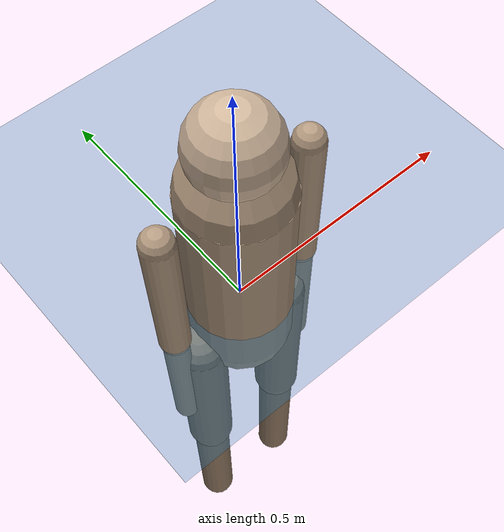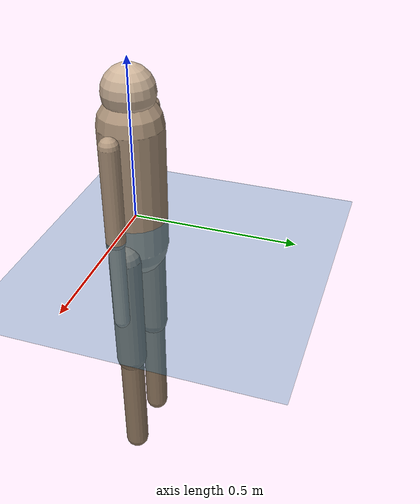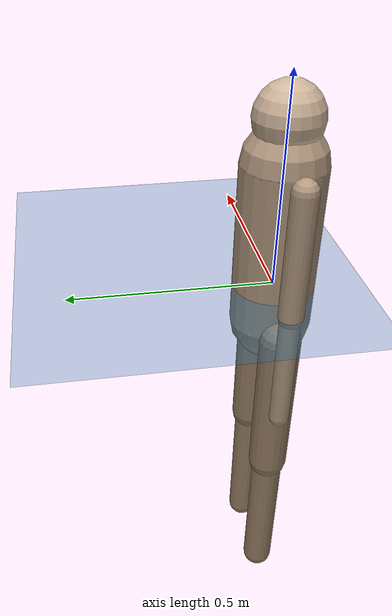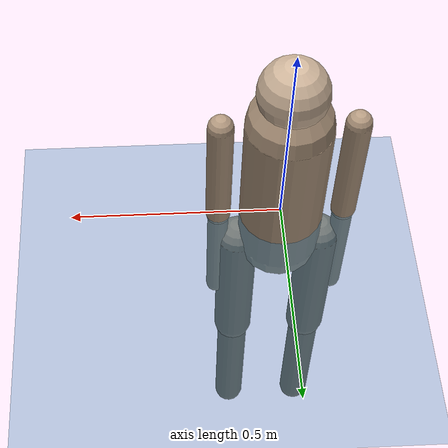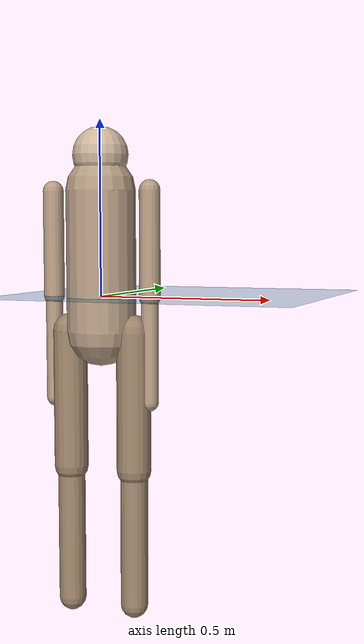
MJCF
<mujoco model="human_swimmer">
    <option gravity="0 0 0" timestep="0.005" viscosity="0.0013" density="1000">
        <flag energy="enable"/>
    </option>

    <asset>
        <texture name="grid" type="2d" builtin="checker" width="512" height="512" rgb1=".1 .2 .3" rgb2=".2 .3 .4"/>
        <material name="grid" texture="grid" texrepeat="1 1" texuniform="true" reflectance=".2"/>
    </asset>

    <default>
        <joint damping="0.5"/>
        <geom friction="0.01 0.01 0.01"/>
    </default>

    <worldbody>
        <!-- Main Directional Light -->
        <light name="sun" pos="0 0 10" dir="0.2 -0.2 -1" diffuse="0.8 0.8 0.8" specular="0.3 0.3 0.3" castshadow="true"/>
        <!-- Fill Light -->
        <light name="fill" pos="0 0 -5" dir="0 0 1" diffuse="0.3 0.3 0.4" specular="0.1 0.1 0.1"/>
        <!-- Ambient Light -->
        <light name="ambient" pos="0 0 0" diffuse="0.1 0.1 0.2" specular="0 0 0"/>

        <geom name="floor" type="plane" size="0 0 .05" material="grid" condim="3" rgba="0.1 0.4 0.6 1"/>

        <camera name="main_camera" pos="10 10 10" xyaxes="1 0 0 0 0 1"/>
        <camera name="chase_cam" pos="0 -4 2" mode="trackcom" xyaxes="0 1 0 0 0 1"/>

        <!-- Changed pos: lowered to Z=0.2 and added quat to rotate 90 degrees around Y axis -->
        <body name="torso" pos="0 0 0.1">
            <freejoint name="root"/>
            <geom name="torso_geom" type="capsule" size="0.1 0.2" rgba="0.7 0.6 0.5 1"/>

            <!-- Head: Positioned at the top of torso, looking up -->
            <body name="head" pos="0 0 0.3">
                <joint name="neck" type="ball" pos="0 0 0"/>
                <geom name="head_geom" type="sphere" size="0.08" rgba="0.8 0.7 0.6 1"/>
            </body>

            <!-- Right Arm -->
            <body name="right_arm" pos="0.15 0 0.2">
                <joint name="right_shoulder" type="ball" pos="0 0 0"/>
                <geom name="r_arm_geom" type="capsule" size="0.03 0.15" pos="0 0 -0.15" rgba="0.7 0.6 0.5 1"/>

                <body name="right_forearm" pos="0 0 -0.3">
                    <joint name="right_elbow" type="hinge" axis="0 1 0" pos="0 0 0"/>
                    <geom name="r_forearm_geom" type="capsule" size="0.025 0.15" pos="0 0 -0.15" rgba="0.7 0.6 0.5 1"/>
                </body>
            </body>

            <!-- Left Arm -->
            <body name="left_arm" pos="-0.15 0 0.2">
                <joint name="left_shoulder" type="ball" pos="0 0 0"/>
                <geom name="l_arm_geom" type="capsule" size="0.03 0.15" pos="0 0 -0.15" rgba="0.7 0.6 0.5 1"/>

                <body name="left_forearm" pos="0 0 -0.3">
                    <joint name="left_elbow" type="hinge" axis="0 1 0" pos="0 0 0"/>
                    <geom name="l_forearm_geom" type="capsule" size="0.025 0.15" pos="0 0 -0.15" rgba="0.7 0.6 0.5 1"/>
                </body>
            </body>

            <!-- Right Leg -->
            <body name="right_leg" pos="0.1 0 -0.2">
                <joint name="right_hip" type="ball" pos="0 0 0"/>
                <geom name="r_thigh_geom" type="capsule" size="0.05 0.2" pos="0 0 -0.2" rgba="0.6 0.5 0.4 1"/>

                <body name="right_calf" pos="0 0 -0.4">
                    <joint name="right_knee" type="hinge" axis="0 1 0" pos="0 0 0"/>
                    <geom name="r_calf_geom" type="capsule" size="0.04 0.2" pos="0 0 -0.2" rgba="0.6 0.5 0.4 1"/>
                </body>
            </body>
^
            <!-- Left Leg -->
            <body name="left_leg" pos="-0.1 0 -0.2">
                <joint name="left_hip" type="ball" pos="0 0 0"/>
                <geom name="l_thigh_geom" type="capsule" size="0.05 0.2" pos="0 0 -0.2" rgba="0.6 0.5 0.4 1"/>

                <body name="left_calf" pos="0 0 -0.4">
                    <joint name="left_knee" type="hinge" axis="0 1 0" pos="0 0 0"/>
                    <geom name="l_calf_geom" type="capsule" size="0.04 0.2" pos="0 0 -0.2" rgba="0.6 0.5 0.4 1"/>
                </body>
            </body>
        </body>
    </worldbody>

    <actuator>
        <motor name="right_shoulder_motor" joint="right_shoulder" gear="20"/>
        <motor name="left_shoulder_motor" joint="left_shoulder" gear="20"/>
        <motor name="right_elbow_motor" joint="right_elbow" gear="40"/>
        <motor name="left_elbow_motor" joint="left_elbow" gear="40"/>
        <motor name="right_hip_motor" joint="right_hip" gear="30"/>
        <motor name="left_hip_motor" joint="left_hip" gear="30"/>
        <motor name="right_knee_motor" joint="right_knee" gear="80"/>
        <motor name="left_knee_motor" joint="left_knee" gear="80"/>
    </actuator>
</mujoco>
